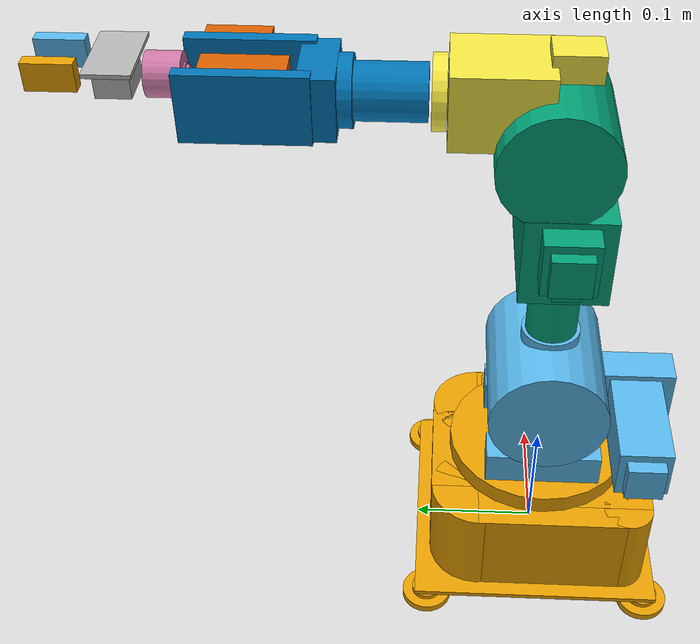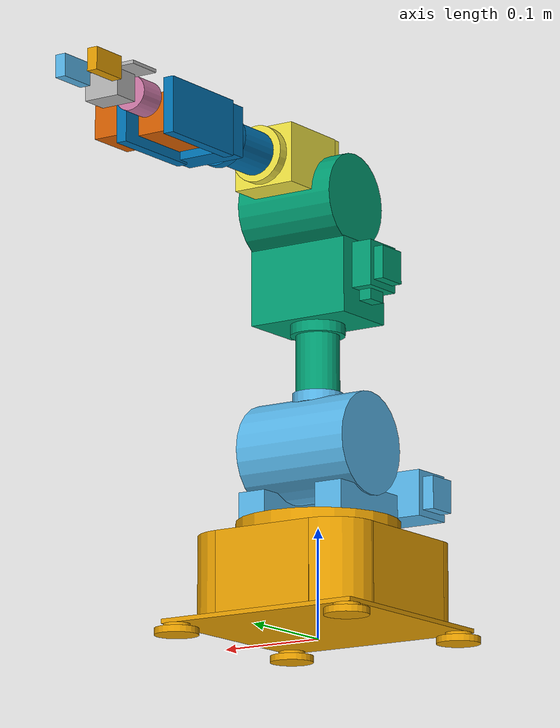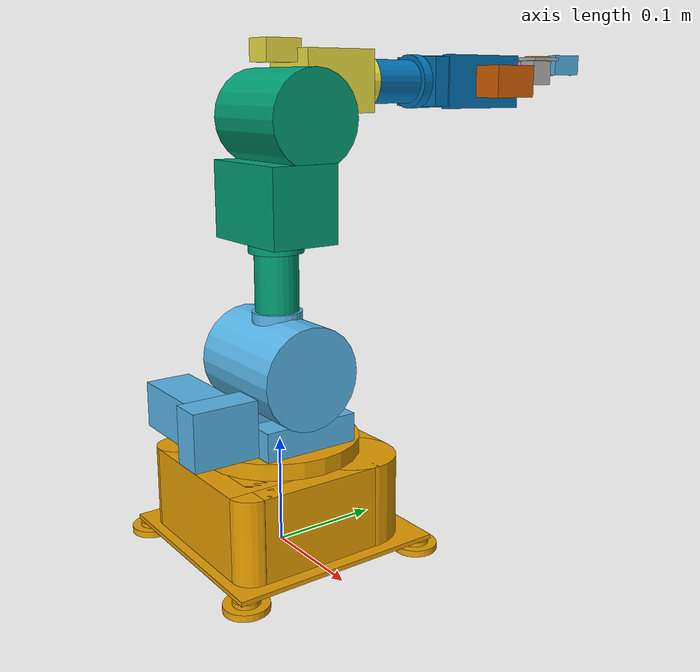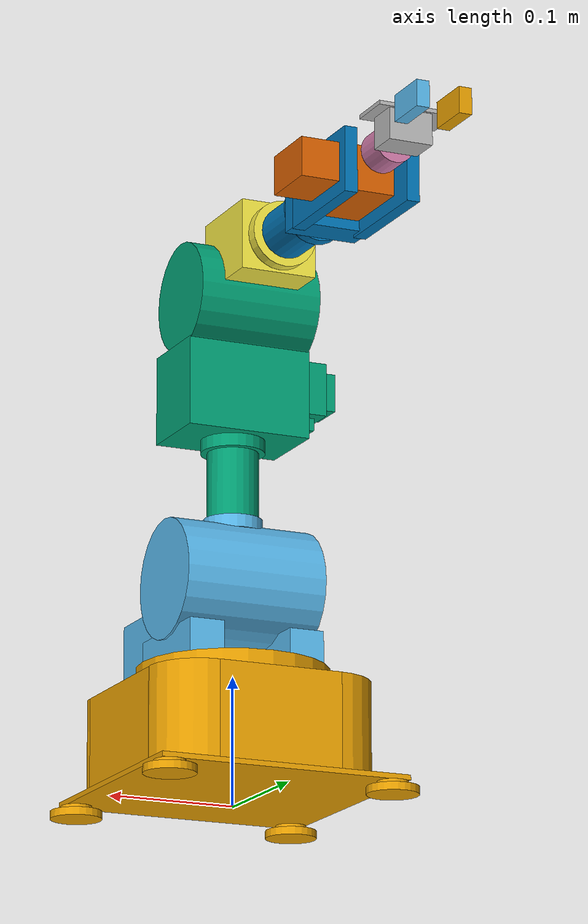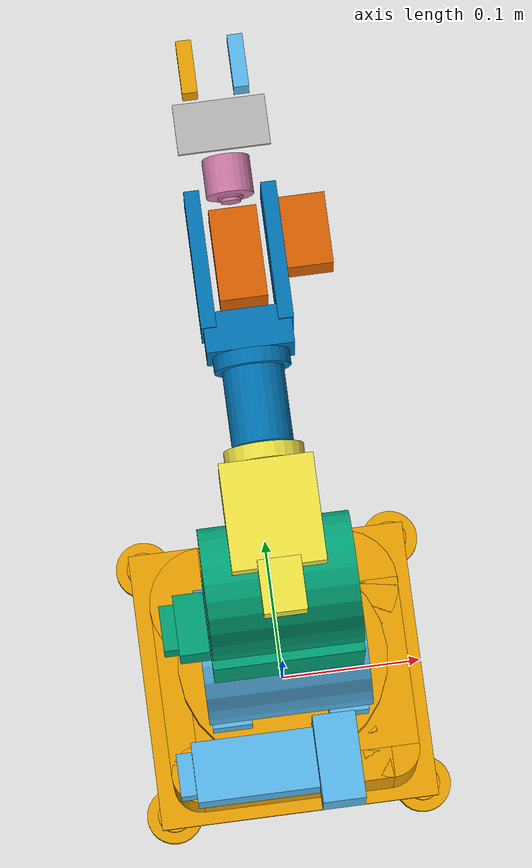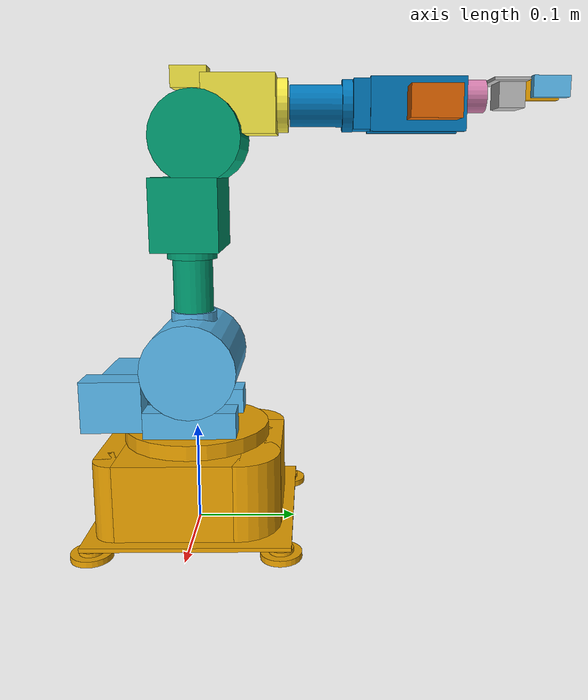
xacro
<?xml version="1.0"?>
<robot xmlns:xacro="http://www.ros.org/wiki/xacro" name="Ned">
    <xacro:arg name="initial_positions_file" default="initial_positions.yaml" />

    <!-- Import Ned urdf file -->
    <xacro:include filename="$(find ros2webots_manipulator)/resource/Ned.urdf" />

    <!-- Import control_xacro -->
    <xacro:include filename="Ned.ros2_control.xacro" />

    <xacro:Ned_ros2_control name="FakeSystem" initial_positions_file="$(arg initial_positions_file)"/>

</robot>

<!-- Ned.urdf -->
<robot name="Ned" xmlns:xacro="http://ros.org/wiki/xacro">
  <link name="base_link">
    <visual>
      <origin xyz="0.09 0.09 0.003" rpy="0 0 0"/>
      <geometry>
        <cylinder radius="0.02" length="0.006"/>
      </geometry>
    </visual>
    <collision>
      <origin xyz="0.09 0.09 0.003" rpy="0 0 0"/>
      <geometry>
        <cylinder radius="0.02" length="0.006"/>
      </geometry>
    </collision>
    <visual>
      <origin xyz="-0.09 0.09 0.003" rpy="0 0 0"/>
      <geometry>
        <cylinder radius="0.02" length="0.006"/>
      </geometry>
    </visual>
    <collision>
      <origin xyz="-0.09 0.09 0.003" rpy="0 0 0"/>
      <geometry>
        <cylinder radius="0.02" length="0.006"/>
      </geometry>
    </collision>
    <visual>
      <origin xyz="0.09 -0.09 0.003" rpy="0 0 0"/>
      <geometry>
        <cylinder radius="0.02" length="0.006"/>
      </geometry>
    </visual>
    <collision>
      <origin xyz="0.09 -0.09 0.003" rpy="0 0 0"/>
      <geometry>
        <cylinder radius="0.02" length="0.006"/>
      </geometry>
    </collision>
    <visual>
      <origin xyz="-0.09 -0.09 0.003" rpy="0 0 0"/>
      <geometry>
        <cylinder radius="0.02" length="0.006"/>
      </geometry>
    </visual>
    <collision>
      <origin xyz="-0.09 -0.09 0.003" rpy="0 0 0"/>
      <geometry>
        <cylinder radius="0.02" length="0.006"/>
      </geometry>
    </collision>
    <visual>
      <origin xyz="0.09 0.09 0.008" rpy="0 0 0"/>
      <geometry>
        <cylinder radius="0.012" length="0.004"/>
      </geometry>
    </visual>
    <collision>
      <origin xyz="0.09 0.09 0.008" rpy="0 0 0"/>
      <geometry>
        <cylinder radius="0.012" length="0.004"/>
      </geometry>
    </collision>
    <visual>
      <origin xyz="-0.09 0.09 0.008" rpy="0 0 0"/>
      <geometry>
        <cylinder radius="0.012" length="0.004"/>
      </geometry>
    </visual>
    <collision>
      <origin xyz="-0.09 0.09 0.008" rpy="0 0 0"/>
      <geometry>
        <cylinder radius="0.012" length="0.004"/>
      </geometry>
    </collision>
    <visual>
      <origin xyz="0.09 -0.09 0.008" rpy="0 0 0"/>
      <geometry>
        <cylinder radius="0.012" length="0.004"/>
      </geometry>
    </visual>
    <collision>
      <origin xyz="0.09 -0.09 0.008" rpy="0 0 0"/>
      <geometry>
        <cylinder radius="0.012" length="0.004"/>
      </geometry>
    </collision>
    <visual>
      <origin xyz="-0.09 -0.09 0.008" rpy="0 0 0"/>
      <geometry>
        <cylinder radius="0.012" length="0.004"/>
      </geometry>
    </visual>
    <collision>
      <origin xyz="-0.09 -0.09 0.008" rpy="0 0 0"/>
      <geometry>
        <cylinder radius="0.012" length="0.004"/>
      </geometry>
    </collision>
    <visual>
      <origin xyz="0 0 0.012" rpy="0 0 0"/>
      <geometry>
        <box size="0.2 0.2 0.004"/>
      </geometry>
    </visual>
    <collision>
      <origin xyz="0 0 0.012" rpy="0 0 0"/>
      <geometry>
        <box size="0.2 0.2 0.004"/>
      </geometry>
    </collision>
    <visual>
      <origin xyz="0 -0.0455 0.052" rpy="0 0 0"/>
      <geometry>
        <box size="0.136 0.091 0.076"/>
      </geometry>
    </visual>
    <collision>
      <origin xyz="0 -0.0455 0.052" rpy="0 0 0"/>
      <geometry>
        <box size="0.136 0.091 0.076"/>
      </geometry>
    </collision>
    <visual>
      <origin xyz="0 0.04425 0.052" rpy="0 0 0"/>
      <geometry>
        <box size="0.099 0.0885 0.076"/>
      </geometry>
    </visual>
    <collision>
      <origin xyz="0 0.04425 0.052" rpy="0 0 0"/>
      <geometry>
        <box size="0.099 0.0885 0.076"/>
      </geometry>
    </collision>
    <visual>
      <origin xyz="0.0485 0.0485 0.052" rpy="0 0 0"/>
      <geometry>
        <cylinder radius="0.04" length="0.076"/>
      </geometry>
    </visual>
    <collision>
      <origin xyz="0.0485 0.0485 0.052" rpy="0 0 0"/>
      <geometry>
        <cylinder radius="0.04" length="0.076"/>
      </geometry>
    </collision>
    <visual>
      <origin xyz="-0.0485 0.0485 0.052" rpy="0 0 0"/>
      <geometry>
        <cylinder radius="0.04" length="0.076"/>
      </geometry>
    </visual>
    <collision>
      <origin xyz="-0.0485 0.0485 0.052" rpy="0 0 0"/>
      <geometry>
        <cylinder radius="0.04" length="0.076"/>
      </geometry>
    </collision>
    <visual>
      <origin xyz="0.068 -0.071 0.052" rpy="0 0 0"/>
      <geometry>
        <cylinder radius="0.02" length="0.076"/>
      </geometry>
    </visual>
    <collision>
      <origin xyz="0.068 -0.071 0.052" rpy="0 0 0"/>
      <geometry>
        <cylinder radius="0.02" length="0.076"/>
      </geometry>
    </collision>
    <visual>
      <origin xyz="-0.068 -0.071 0.052" rpy="0 0 0"/>
      <geometry>
        <cylinder radius="0.02" length="0.076"/>
      </geometry>
    </visual>
    <collision>
      <origin xyz="-0.068 -0.071 0.052" rpy="0 0 0"/>
      <geometry>
        <cylinder radius="0.02" length="0.076"/>
      </geometry>
    </collision>
    <visual>
      <origin xyz="0 -0.0095 0.052" rpy="0 0 0"/>
      <geometry>
        <box size="0.176 0.1195 0.076"/>
      </geometry>
    </visual>
    <collision>
      <origin xyz="0 -0.0095 0.052" rpy="0 0 0"/>
      <geometry>
        <box size="0.176 0.1195 0.076"/>
      </geometry>
    </collision>
    <visual>
      <origin xyz="0 0 0.0975" rpy="0 0 0"/>
      <geometry>
        <cylinder radius="0.074" length="0.015"/>
      </geometry>
    </visual>
    <collision>
      <origin xyz="0 0 0.0975" rpy="0 0 0"/>
      <geometry>
        <cylinder radius="0.074" length="0.015"/>
      </geometry>
    </collision>
  </link>
  <joint name="joint_1" type="revolute">
    <parent link="base_link"/>
    <child link="shoulder_link"/>
    <axis xyz="0 0 1"/>
    <limit effort="10000" lower="-2.8" upper="2.8" velocity="10"/>
    <origin xyz="0 0 0.1065" rpy="0 0 0"/>
  </joint>
  <link name="shoulder_link">
    <visual>
      <origin xyz="0 0 0.111566" rpy="0 0 0"/>
      <geometry>
        <cylinder radius="0.023" length="0.01"/>
      </geometry>
    </visual>
    <collision>
      <origin xyz="0 0 0.111566" rpy="0 0 0"/>
      <geometry>
        <cylinder radius="0.023" length="0.01"/>
      </geometry>
    </collision>
    <visual>
      <origin xyz="0 0 0.065" rpy="3.141593 1.570793 3.141593"/>
      <geometry>
        <cylinder radius="0.047" length="0.1135"/>
      </geometry>
    </visual>
    <collision>
      <origin xyz="0 0 0.065" rpy="3.141593 1.570793 3.141593"/>
      <geometry>
        <cylinder radius="0.047" length="0.1135"/>
      </geometry>
    </collision>
    <visual>
      <origin xyz="0.041 0 0" rpy="0 0 0"/>
      <geometry>
        <box size="0.0278 0.091 0.05"/>
      </geometry>
    </visual>
    <collision>
      <origin xyz="0.041 0 0" rpy="0 0 0"/>
      <geometry>
        <box size="0.0278 0.091 0.05"/>
      </geometry>
    </collision>
    <visual>
      <origin xyz="-0.041 0 0" rpy="0 0 0"/>
      <geometry>
        <box size="0.0278 0.091 0.05"/>
      </geometry>
    </visual>
    <collision>
      <origin xyz="-0.041 0 0" rpy="0 0 0"/>
      <geometry>
        <box size="0.0278 0.091 0.05"/>
      </geometry>
    </collision>
    <visual>
      <origin xyz="-0.028996 -0.076515 0.028121" rpy="0 0 0"/>
      <geometry>
        <box size="0.085 0.042 0.042"/>
      </geometry>
    </visual>
    <collision>
      <origin xyz="-0.028996 -0.076515 0.028121" rpy="0 0 0"/>
      <geometry>
        <box size="0.085 0.042 0.042"/>
      </geometry>
    </collision>
    <visual>
      <origin xyz="0.028993 -0.078529 0.02697" rpy="0 0 0"/>
      <geometry>
        <box size="0.03 0.061 0.052"/>
      </geometry>
    </visual>
    <collision>
      <origin xyz="0.028993 -0.078529 0.02697" rpy="0 0 0"/>
      <geometry>
        <box size="0.03 0.061 0.052"/>
      </geometry>
    </collision>
    <visual>
      <origin xyz="-0.077134 -0.076515 0.028121" rpy="0 0 0"/>
      <geometry>
        <box size="0.011 0.03 0.03"/>
      </geometry>
    </visual>
    <collision>
      <origin xyz="-0.077134 -0.076515 0.028121" rpy="0 0 0"/>
      <geometry>
        <box size="0.011 0.03 0.03"/>
      </geometry>
    </collision>
  </link>
  <joint name="joint_2" type="revolute">
    <parent link="shoulder_link"/>
    <child link="arm_link"/>
    <axis xyz="0 0 1"/>
    <limit effort="10000" lower="-0.8" upper="0.8" velocity="10"/>
    <origin xyz="0 0 0.065" rpy="0 -1.57 0"/>
  </joint>
  <link name="arm_link">
    <visual>
      <origin xyz="0.16 0 0.060549" rpy="0 0 0"/>
      <geometry>
        <box size="0.042 0.04 0.02"/>
      </geometry>
    </visual>
    <collision>
      <origin xyz="0.16 0 0.060549" rpy="0 0 0"/>
      <geometry>
        <box size="0.042 0.04 0.02"/>
      </geometry>
    </collision>
    <visual>
      <origin xyz="0.16 0 0.075315" rpy="0 0 0"/>
      <geometry>
        <box size="0.03 0.03 0.01"/>
      </geometry>
    </visual>
    <collision>
      <origin xyz="0.16 0 0.075315" rpy="0 0 0"/>
      <geometry>
        <box size="0.03 0.03 0.01"/>
      </geometry>
    </collision>
    <visual>
      <origin xyz="0.133834 0.000241 0.058238" rpy="0 0 0"/>
      <geometry>
        <box size="0.01 0.02 0.012"/>
      </geometry>
    </visual>
    <collision>
      <origin xyz="0.133834 0.000241 0.058238" rpy="0 0 0"/>
      <geometry>
        <box size="0.01 0.02 0.012"/>
      </geometry>
    </collision>
    <visual>
      <origin xyz="0.08 0 0" rpy="3.141593 1.570793 3.141593"/>
      <geometry>
        <cylinder radius="0.02" length="0.07"/>
      </geometry>
    </visual>
    <collision>
      <origin xyz="0.08 0 0" rpy="3.141593 1.570793 3.141593"/>
      <geometry>
        <cylinder radius="0.02" length="0.07"/>
      </geometry>
    </collision>
    <visual>
      <origin xyz="0.221923 0.011892 0" rpy="0 0 0"/>
      <geometry>
        <cylinder radius="0.043" length="0.0986"/>
      </geometry>
    </visual>
    <collision>
      <origin xyz="0.221923 0.011892 0" rpy="0 0 0"/>
      <geometry>
        <cylinder radius="0.043" length="0.0986"/>
      </geometry>
    </collision>
    <visual>
      <origin xyz="0.11 0 0" rpy="3.141593 1.570793 3.141593"/>
      <geometry>
        <cylinder radius="0.025" length="0.01"/>
      </geometry>
    </visual>
    <collision>
      <origin xyz="0.11 0 0" rpy="3.141593 1.570793 3.141593"/>
      <geometry>
        <cylinder radius="0.025" length="0.01"/>
      </geometry>
    </collision>
    <visual>
      <origin xyz="0.15 0 0" rpy="0 0 0"/>
      <geometry>
        <box size="0.07 0.065 0.1"/>
      </geometry>
    </visual>
    <collision>
      <origin xyz="0.15 0 0" rpy="0 0 0"/>
      <geometry>
        <box size="0.07 0.065 0.1"/>
      </geometry>
    </collision>
  </link>
  <joint name="joint_3" type="revolute">
    <parent link="arm_link"/>
    <child link="elbow_link"/>
    <axis xyz="0 0 1"/>
    <limit effort="10000" lower="-1.5" upper="1.3" velocity="10"/>
    <origin xyz="0.221 0.012 0" rpy="0 0 0"/>
  </joint>
  <link name="elbow_link">
    <visual>
      <origin xyz="0.057878 -0.008958 -0.000023" rpy="0 0 0"/>
      <geometry>
        <box size="0.02 0.035 0.028"/>
      </geometry>
    </visual>
    <collision>
      <origin xyz="0.057878 -0.008958 -0.000023" rpy="0 0 0"/>
      <geometry>
        <box size="0.02 0.035 0.028"/>
      </geometry>
    </collision>
    <visual>
      <origin xyz="0.032172 0.039196 -0.000023" rpy="0 0 0"/>
      <geometry>
        <box size="0.055 0.07 0.061"/>
      </geometry>
    </visual>
    <collision>
      <origin xyz="0.032172 0.039196 -0.000023" rpy="0 0 0"/>
      <geometry>
        <box size="0.055 0.07 0.061"/>
      </geometry>
    </collision>
    <visual>
      <origin xyz="0.032406 0.08 0" rpy="1.5708 0 0"/>
      <geometry>
        <cylinder radius="0.026" length="0.01"/>
      </geometry>
    </visual>
    <collision>
      <origin xyz="0.032406 0.08 0" rpy="1.5708 0 0"/>
      <geometry>
        <cylinder radius="0.026" length="0.01"/>
      </geometry>
    </collision>
  </link>
  <joint name="joint_4" type="revolute">
    <parent link="elbow_link"/>
    <child link="forearm_link"/>
    <axis xyz="-0.000001 0 1"/>
    <limit effort="10000" lower="-2" upper="2" velocity="10"/>
    <origin xyz="0.032 0.042 0" rpy="-1.568653 -1.57 -0.001347"/>
  </joint>
  <link name="forearm_link">
    <visual>
      <origin xyz="0 0 0.11796" rpy="0 0 0"/>
      <geometry>
        <box size="0.057 0.046 0.026"/>
      </geometry>
    </visual>
    <collision>
      <origin xyz="0 0 0.11796" rpy="0 0 0"/>
      <geometry>
        <box size="0.057 0.046 0.026"/>
      </geometry>
    </collision>
    <visual>
      <origin xyz="0.024933 0 0.165857" rpy="0 0 0"/>
      <geometry>
        <box size="0.01 0.05 0.09"/>
      </geometry>
    </visual>
    <collision>
      <origin xyz="0.024933 0 0.165857" rpy="0 0 0"/>
      <geometry>
        <box size="0.01 0.05 0.09"/>
      </geometry>
    </collision>
    <visual>
      <origin xyz="-0.024933 0 0.165857" rpy="0 0 0"/>
      <geometry>
        <box size="0.01 0.05 0.09"/>
      </geometry>
    </visual>
    <collision>
      <origin xyz="-0.024933 0 0.165857" rpy="0 0 0"/>
      <geometry>
        <box size="0.01 0.05 0.09"/>
      </geometry>
    </collision>
    <visual>
      <origin xyz="0 0 0.1" rpy="0 0 0"/>
      <geometry>
        <cylinder radius="0.025" length="0.01"/>
      </geometry>
    </visual>
    <collision>
      <origin xyz="0 0 0.1" rpy="0 0 0"/>
      <geometry>
        <cylinder radius="0.025" length="0.01"/>
      </geometry>
    </collision>
    <visual>
      <origin xyz="0 0 0.08" rpy="0 0 0"/>
      <geometry>
        <cylinder radius="0.02" length="0.07"/>
      </geometry>
    </visual>
    <collision>
      <origin xyz="0 0 0.08" rpy="0 0 0"/>
      <geometry>
        <cylinder radius="0.02" length="0.07"/>
      </geometry>
    </collision>
  </link>
  <joint name="joint_5" type="revolute">
    <parent link="forearm_link"/>
    <child link="wrist_link"/>
    <axis xyz="0.000001 0 1"/>
    <limit effort="10000" lower="-1.5" upper="1.5" velocity="10"/>
    <origin xyz="0 0 0.188" rpy="-1.570187 -1.57 1.570187"/>
  </joint>
  <link name="wrist_link">
    <visual>
      <origin xyz="-0.019278 -0.000743 0" rpy="0 0 0"/>
      <geometry>
        <box size="0.06 0.035 0.031"/>
      </geometry>
    </visual>
    <collision>
      <origin xyz="-0.019278 -0.000743 0" rpy="0 0 0"/>
      <geometry>
        <box size="0.06 0.035 0.031"/>
      </geometry>
    </collision>
    <visual>
      <origin xyz="-0.009676 0.000228 0.045144" rpy="0 0 0"/>
      <geometry>
        <box size="0.047 0.03 0.03"/>
      </geometry>
    </visual>
    <collision>
      <origin xyz="-0.009676 0.000228 0.045144" rpy="0 0 0"/>
      <geometry>
        <box size="0.047 0.03 0.03"/>
      </geometry>
    </collision>
  </link>
  <joint name="joint_6" type="revolute">
    <parent link="wrist_link"/>
    <child link="hand_link"/>
    <axis xyz="0 0 1"/>
    <limit effort="10000" lower="-2.5" upper="2.5" velocity="10"/>
    <origin xyz="0.0197 0.00925 0" rpy="0 1.57 0"/>
  </joint>
  <link name="hand_link">
    <visual>
      <origin xyz="0 0 0.012597" rpy="0 0 0"/>
      <geometry>
        <cylinder radius="0.0155" length="0.025"/>
      </geometry>
    </visual>
    <collision>
      <origin xyz="0 0 0.012597" rpy="0 0 0"/>
      <geometry>
        <cylinder radius="0.0155" length="0.025"/>
      </geometry>
    </collision>
    <visual>
      <origin xyz="0 0 -0.001" rpy="0 0 0"/>
      <geometry>
        <cylinder radius="0.0083" length="0.001"/>
      </geometry>
    </visual>
    <collision>
      <origin xyz="0 0 -0.001" rpy="0 0 0"/>
      <geometry>
        <cylinder radius="0.0083" length="0.001"/>
      </geometry>
    </collision>
    <visual>
      <origin xyz="0 0 -0.003" rpy="0 0 0"/>
      <geometry>
        <cylinder radius="0.0066" length="0.002"/>
      </geometry>
    </visual>
    <collision>
      <origin xyz="0 0 -0.003" rpy="0 0 0"/>
      <geometry>
        <cylinder radius="0.0066" length="0.002"/>
      </geometry>
    </collision>
  </link>
  <link name="base_gripper">
    <visual>
      <origin xyz="0.013321 -0.023019 0" rpy="0 0 0"/>
      <geometry>
        <box size="0.003 0.033 0.06"/>
      </geometry>
    </visual>
    <collision>
      <origin xyz="0.013321 -0.023019 0" rpy="0 0 0"/>
      <geometry>
        <box size="0.003 0.033 0.06"/>
      </geometry>
    </collision>
    <visual>
      <origin xyz="-0.000465 -0.025439 0.004496" rpy="0 0 0"/>
      <geometry>
        <box size="0.024 0.025 0.034"/>
      </geometry>
    </visual>
    <collision>
      <origin xyz="-0.000465 -0.025439 0.004496" rpy="0 0 0"/>
      <geometry>
        <box size="0.024 0.025 0.034"/>
      </geometry>
    </collision>
  </link>
  <joint name="hand_link_base_gripper_joint" type="fixed">
    <parent link="hand_link"/>
    <child link="base_gripper"/>
    <origin xyz="0 0 0.0215" rpy="-1.57 -0.000001 1.57"/>
  </joint>
  <joint name="gripper::left" type="prismatic">
    <parent link="base_gripper"/>
    <child link="jaw_2"/>
    <axis xyz="0 -1 0"/>
    <origin xyz="0.01455 -0.0244 -0.011066" rpy="1.5708 0 0"/>
    <limit effort="1" lower="-0.01" upper="0.01" velocity="5"/>
  </joint>
  <link name="jaw_2">
    <visual>
      <origin xyz="-0.007 -0.0064 0.0386" rpy="0 0 0"/>
      <geometry>
        <box size="0.02 0.01 0.035"/>
      </geometry>
    </visual>
    <collision>
      <origin xyz="-0.007 -0.0064 0.0386" rpy="0 0 0"/>
      <geometry>
        <box size="0.02 0.01 0.035"/>
      </geometry>
    </collision>
  </link>
  <joint name="gripper::right" type="prismatic">
    <parent link="base_gripper"/>
    <child link="jaw_1"/>
    <axis xyz="0 1 0"/>
    <origin xyz="0.01455 -0.0244 0.009614" rpy="1.5708 0 0"/>
    <limit effort="1" lower="-0.01" upper="0.01" velocity="5"/>
  </joint>
  <link name="jaw_1">
    <visual>
      <origin xyz="-0.007 0.0064 0.0386" rpy="0 0 0"/>
      <geometry>
        <box size="0.02 0.01 0.035"/>
      </geometry>
    </visual>
    <collision>
      <origin xyz="-0.007 0.0064 0.0386" rpy="0 0 0"/>
      <geometry>
        <box size="0.02 0.01 0.035"/>
      </geometry>
    </collision>
  </link>
</robot>
